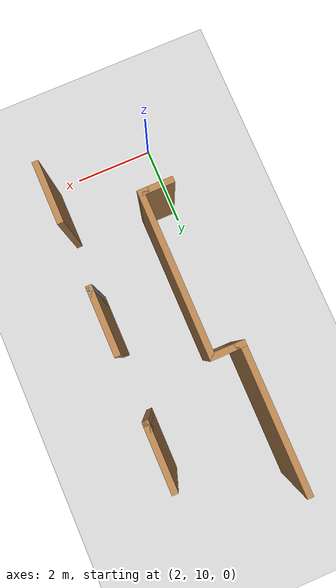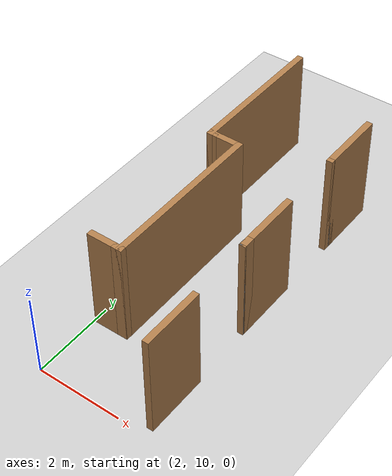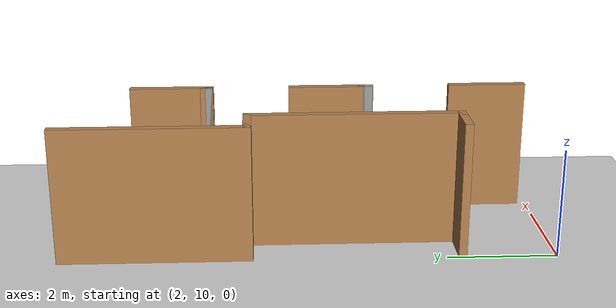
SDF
<sdf version="1.6">
 <world name="default">
  <model name="ground_plane">
   <static>1</static>
   <link name="link">
    <collision name="collision">
     <geometry><plane><normal>0 0 1</normal><size>100 100</size></plane></geometry>
     <surface>
      <contact><collide_bitmask>65535</collide_bitmask></contact>
      <friction><ode><mu>100</mu><mu2>50</mu2></ode></friction>
     </surface>
    </collision>
    <visual name="visual">
     <cast_shadows>0</cast_shadows>
     <geometry><plane><normal>0 0 1</normal><size>100 100</size></plane></geometry>
     <material>
      <script><uri>file://media/materials/scripts/gazebo.material</uri><name>Gazebo/Grey</name></script>
     </material>
    </visual>
   </link>
  </model>
  <model name="ecst_lab_v2">
   <pose>2.40126 7.41042 0 0 -0 -1.57079</pose>
   <link name="Wall_119">
    <collision name="Wall_119_Collision">
     <geometry><box><size>1.5 0.15 2.5</size></box></geometry>
     <pose>0 0 1.25 0 -0 0</pose>
    </collision>
    <visual name="Wall_119_Visual">
     <pose>0 0 1.25 0 -0 0</pose>
     <geometry><box><size>1.5 0.15 2.5</size></box></geometry>
     <material>
      <script><uri>file://media/materials/scripts/gazebo.material</uri><name>Gazebo/Wood</name></script>
      <ambient>1 1 1 1</ambient>
     </material>
     <meta><layer>0</layer></meta>
    </visual>
    <pose>-9.6685 2.21822 0 0 -0 0</pose>
   </link>
   <link name="Wall_120">
    <collision name="Wall_120_Collision">
     <geometry><box><size>0.25 0.15 2.5</size></box></geometry>
     <pose>0 0 1.25 0 -0 0</pose>
    </collision>
    <visual name="Wall_120_Visual">
     <pose>0 0 1.25 0 -0 0</pose>
     <geometry><box><size>0.25 0.15 2.5</size></box></geometry>
     <material>
      <script><uri>file://media/materials/scripts/gazebo.material</uri><name>Gazebo/Wood</name></script>
      <ambient>1 1 1 1</ambient>
     </material>
     <meta><layer>0</layer></meta>
    </visual>
    <pose>-8.9435 2.21822 0 0 -0 0</pose>
   </link>
   <link name="Wall_121">
    <collision name="Wall_121_Collision">
     <geometry><box><size>0.15 0.15 2.5</size></box></geometry>
     <pose>0 0 1.25 0 -0 0</pose>
    </collision>
    <visual name="Wall_121_Visual">
     <pose>0 0 1.25 0 -0 0</pose>
     <geometry><box><size>0.15 0.15 2.5</size></box></geometry>
     <material>
      <script><uri>file://media/materials/scripts/gazebo.material</uri><name>Gazebo/Grey</name></script>
      <ambient>1 1 1 1</ambient>
     </material>
     <meta><layer>0</layer></meta>
    </visual>
    <pose>-8.8935 2.21822 0 0 -0 0</pose>
   </link>
   <link name="Wall_122">
    <collision name="Wall_122_Collision">
     <geometry><box><size>0.16 0.15 2.5</size></box></geometry>
     <pose>0 0 1.25 0 -0 0</pose>
    </collision>
    <visual name="Wall_122_Visual">
     <pose>0 0 1.25 0 -0 0</pose>
     <geometry><box><size>0.16 0.15 2.5</size></box></geometry>
     <material>
      <script><uri>file://media/materials/scripts/gazebo.material</uri><name>Gazebo/Wood</name></script>
      <ambient>1 1 1 1</ambient>
     </material>
     <meta><layer>0</layer></meta>
    </visual>
    <pose>-8.8885 2.21822 0 0 -0 0</pose>
   </link>
   <link name="Wall_126">
    <collision name="Wall_126_Collision">
     <geometry><box><size>1.5 0.15 2.5</size></box></geometry>
     <pose>0 0 1.25 0 -0 0</pose>
    </collision>
    <visual name="Wall_126_Visual">
     <pose>0 0 1.25 0 -0 0</pose>
     <geometry><box><size>1.5 0.15 2.5</size></box></geometry>
     <material>
      <script><uri>file://media/materials/scripts/gazebo.material</uri><name>Gazebo/Wood</name></script>
      <ambient>1 1 1 1</ambient>
     </material>
     <meta><layer>0</layer></meta>
    </visual>
    <pose>-6.6085 2.21822 0 0 -0 0</pose>
   </link>
   <link name="Wall_127">
    <collision name="Wall_127_Collision">
     <geometry><box><size>0.25 0.15 2.5</size></box></geometry>
     <pose>0 0 1.25 0 -0 0</pose>
    </collision>
    <visual name="Wall_127_Visual">
     <pose>0 0 1.25 0 -0 0</pose>
     <geometry><box><size>0.25 0.15 2.5</size></box></geometry>
     <material>
      <script><uri>file://media/materials/scripts/gazebo.material</uri><name>Gazebo/Wood</name></script>
      <ambient>1 1 1 1</ambient>
     </material>
     <meta><layer>0</layer></meta>
    </visual>
    <pose>-5.8835 2.21822 0 0 -0 0</pose>
   </link>
   <link name="Wall_128">
    <collision name="Wall_128_Collision">
     <geometry><box><size>0.15 0.15 2.5</size></box></geometry>
     <pose>0 0 1.25 0 -0 0</pose>
    </collision>
    <visual name="Wall_128_Visual">
     <pose>0 0 1.25 0 -0 0</pose>
     <geometry><box><size>0.15 0.15 2.5</size></box></geometry>
     <material>
      <script><uri>file://media/materials/scripts/gazebo.material</uri><name>Gazebo/Grey</name></script>
      <ambient>1 1 1 1</ambient>
     </material>
     <meta><layer>0</layer></meta>
    </visual>
    <pose>-5.8335 2.21822 0 0 -0 0</pose>
   </link>
   <link name="Wall_129">
    <collision name="Wall_129_Collision">
     <geometry><box><size>0.16 0.15 2.5</size></box></geometry>
     <pose>0 0 1.25 0 -0 0</pose>
    </collision>
    <visual name="Wall_129_Visual">
     <pose>0 0 1.25 0 -0 0</pose>
     <geometry><box><size>0.16 0.15 2.5</size></box></geometry>
     <material>
      <script><uri>file://media/materials/scripts/gazebo.material</uri><name>Gazebo/Wood</name></script>
      <ambient>1 1 1 1</ambient>
     </material>
     <meta><layer>0</layer></meta>
    </visual>
    <pose>-5.8285 2.21822 0 0 -0 0</pose>
   </link>
   <link name="Wall_130">
    <collision name="Wall_130_Collision">
     <geometry><box><size>0.16 0.15 2.5</size></box></geometry>
     <pose>0 0 1.25 0 -0 0</pose>
    </collision>
    <visual name="Wall_130_Visual">
     <pose>0 0 1.25 0 -0 0</pose>
     <geometry><box><size>0.16 0.15 2.5</size></box></geometry>
     <material>
      <script><uri>file://media/materials/scripts/gazebo.material</uri><name>Gazebo/Grey</name></script>
      <ambient>1 1 1 1</ambient>
     </material>
     <meta><layer>0</layer></meta>
    </visual>
    <pose>-5.8185 2.21822 0 0 -0 0</pose>
   </link>
   <link name="Wall_131">
    <collision name="Wall_131_Collision">
     <geometry><box><size>0.16 0.15 2.5</size></box></geometry>
     <pose>0 0 1.25 0 -0 0</pose>
    </collision>
    <visual name="Wall_131_Visual">
     <pose>0 0 1.25 0 -0 0</pose>
     <geometry><box><size>0.16 0.15 2.5</size></box></geometry>
     <material>
      <script><uri>file://media/materials/scripts/gazebo.material</uri><name>Gazebo/Grey</name></script>
      <ambient>1 1 1 1</ambient>
     </material>
     <meta><layer>0</layer></meta>
    </visual>
    <pose>-5.8085 2.21822 0 0 -0 0</pose>
   </link>
   <link name="Wall_132">
    <collision name="Wall_132_Collision">
     <geometry><box><size>0.16 0.15 2.5</size></box></geometry>
     <pose>0 0 1.25 0 -0 0</pose>
    </collision>
    <visual name="Wall_132_Visual">
     <pose>0 0 1.25 0 -0 0</pose>
     <geometry><box><size>0.16 0.15 2.5</size></box></geometry>
     <material>
      <script><uri>file://media/materials/scripts/gazebo.material</uri><name>Gazebo/Wood</name></script>
      <ambient>1 1 1 1</ambient>
     </material>
     <meta><layer>0</layer></meta>
    </visual>
    <pose>-5.7985 2.21822 0 0 -0 0</pose>
   </link>
   <link name="Wall_2">
    <collision name="Wall_2_Collision">
     <geometry><box><size>1.5 0.15 2.5</size></box></geometry>
     <pose>0 0 1.25 0 -0 0</pose>
    </collision>
    <visual name="Wall_2_Visual">
     <pose>0 0 1.25 0 -0 0</pose>
     <geometry><box><size>1.5 0.15 2.5</size></box></geometry>
     <material>
      <script><uri>file://media/materials/scripts/gazebo.material</uri><name>Gazebo/Wood</name></script>
      <ambient>1 1 1 1</ambient>
     </material>
     <meta><layer>0</layer></meta>
    </visual>
    <pose>-3.48801 2.25228 0 0 -0 0</pose>
   </link>
   <link name="Wall_76">
    <collision name="Wall_76_Collision">
     <geometry><box><size>0.75 0.15 2.5</size></box></geometry>
     <pose>0 0 1.25 0 -0 0</pose>
    </collision>
    <visual name="Wall_76_Visual">
     <pose>0 0 1.25 0 -0 0</pose>
     <geometry><box><size>0.75 0.15 2.5</size></box></geometry>
     <material>
      <script><uri>file://media/materials/scripts/gazebo.material</uri><name>Gazebo/Wood</name></script>
      <ambient>1 1 1 1</ambient>
     </material>
     <meta><layer>0</layer></meta>
    </visual>
    <pose>-4.29657 -0.002274 0 0 -0 1.5708</pose>
   </link>
   <link name="Wall_77">
    <collision name="Wall_77_Collision">
     <geometry><box><size>0.25 0.15 2.5</size></box></geometry>
     <pose>0 0 1.25 0 -0 0</pose>
    </collision>
    <visual name="Wall_77_Visual">
     <pose>0 0 1.25 0 -0 0</pose>
     <geometry><box><size>0.25 0.15 2.5</size></box></geometry>
     <material>
      <script><uri>file://media/materials/scripts/gazebo.material</uri><name>Gazebo/Wood</name></script>
      <ambient>1 1 1 1</ambient>
     </material>
     <meta><layer>0</layer></meta>
    </visual>
    <pose>-4.29657 0.347726 0 0 -0 1.5708</pose>
   </link>
   <link name="Wall_78">
    <collision name="Wall_78_Collision">
     <geometry><box><size>4 0.15 2.5</size></box></geometry>
     <pose>0 0 1.25 0 -0 0</pose>
    </collision>
    <visual name="Wall_78_Visual">
     <pose>0 0 1.25 0 -0 0</pose>
     <geometry><box><size>4 0.15 2.5</size></box></geometry>
     <material>
      <script><uri>file://media/materials/scripts/gazebo.material</uri><name>Gazebo/Wood</name></script>
      <ambient>1 1 1 1</ambient>
     </material>
     <meta><layer>0</layer></meta>
    </visual>
    <pose>-6.22157 0.397726 0 0 -0 3.14159</pose>
   </link>
   <link name="Wall_79">
    <collision name="Wall_79_Collision">
     <geometry><box><size>0.75 0.15 2.5</size></box></geometry>
     <pose>0 0 1.25 0 -0 0</pose>
    </collision>
    <visual name="Wall_79_Visual">
     <pose>0 0 1.25 0 -0 0</pose>
     <geometry><box><size>0.75 0.15 2.5</size></box></geometry>
     <material>
      <script><uri>file://media/materials/scripts/gazebo.material</uri><name>Gazebo/Wood</name></script>
      <ambient>1 1 1 1</ambient>
     </material>
     <meta><layer>0</layer></meta>
    </visual>
    <pose>-8.14657 0.097726 0 0 -0 -1.5708</pose>
   </link>
   <link name="Wall_80">
    <collision name="Wall_80_Collision">
     <geometry><box><size>0.25 0.15 2.5</size></box></geometry>
     <pose>0 0 1.25 0 -0 0</pose>
    </collision>
    <visual name="Wall_80_Visual">
     <pose>0 0 1.25 0 -0 0</pose>
     <geometry><box><size>0.25 0.15 2.5</size></box></geometry>
     <material>
      <script><uri>file://media/materials/scripts/gazebo.material</uri><name>Gazebo/Wood</name></script>
      <ambient>1 1 1 1</ambient>
     </material>
     <meta><layer>0</layer></meta>
    </visual>
    <pose>-8.14657 -0.252274 0 0 -0 -1.5708</pose>
   </link>
   <link name="Wall_81">
    <collision name="Wall_81_Collision">
     <geometry><box><size>3.5 0.15 2.5</size></box></geometry>
     <pose>0 0 1.25 0 -0 0</pose>
    </collision>
    <visual name="Wall_81_Visual">
     <pose>0 0 1.25 0 -0 0</pose>
     <geometry><box><size>3.5 0.15 2.5</size></box></geometry>
     <material>
      <script><uri>file://media/materials/scripts/gazebo.material</uri><name>Gazebo/Wood</name></script>
      <ambient>1 1 1 1</ambient>
     </material>
     <meta><layer>0</layer></meta>
    </visual>
    <pose>-9.82157 -0.302274 0 0 -0 3.14159</pose>
   </link>
   <static>1</static>
  </model>
 </world>
</sdf>
